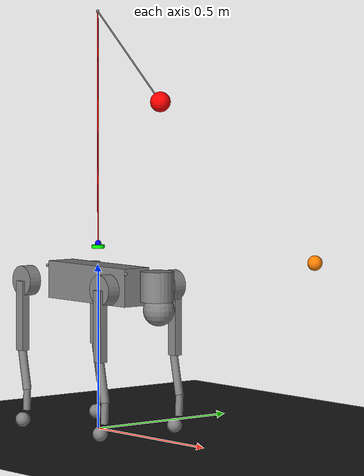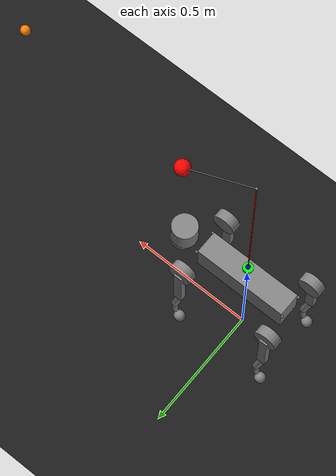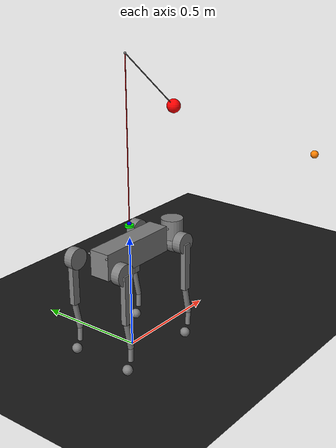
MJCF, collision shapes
<mujoco model="go2 scene">
  <include file="go2rod.xml" />

  <statistic center="0.75 0.75 0.7" extent="0.6" />

  <visual>
    <headlight diffuse="0.6 0.6 0.6" ambient="0.3 0.3 0.3" specular="0 0 0" />
    <rgba haze="0.1 0.1 0.1 1" />
    <global azimuth="225" elevation="-20" />
  </visual>

  <asset>
    <texture type="skybox" builtin="gradient" rgb1="0.1 0.1 0.1" rgb2="0.15 0.15 0.15" width="512"
      height="3072" />
    <texture type="2d" name="groundplane" builtin="checker" mark="edge" rgb1="0.1 0.1 0.1"
      rgb2="0.1 0.1 0.1"
      markrgb="0.8 0.8 0.8" width="300" height="300" />
    <material name="groundplane" texture="groundplane" texuniform="true" texrepeat="5 5"
      reflectance="0.2" />
    <material name="blue_material" rgba="0 0 1 1" />
    <material name="yellow_material" rgba="1 1 0 1" />
    <material name="orange_material" rgba="1 0.5 0 1" />
  </asset>

  <worldbody>
    <light pos="0 0 1.5" dir="0 0 -1" directional="true" />
    <geom name="floor" size="0 0 0.05" type="plane" material="groundplane" />

    <body name="target" pos="1.2 -0.2 0.6">
      <!-- Virtual target sphere -->
      <geom type="sphere" size="0.02" material="orange_material" />

      <!-- Original box target (commented out) -->
    </body>

  </worldbody>

</mujoco>

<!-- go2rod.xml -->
<mujoco model="go2">
  <compiler angle="radian" meshdir="assets" autolimits="true" />

  <option cone="elliptic" impratio="100" />

  <default>
    <default class="go2">
      <geom friction="0.6" margin="0.001" condim="1" />
      <joint axis="0 1 0" damping="2" armature="0.01" frictionloss="0.2" />
      <motor ctrlrange="-23.7 23.7" />
      <default class="abduction">
        <joint axis="1 0 0" range="-1.0472 1.0472" />
      </default>
      <default class="hip">
        <default class="front_hip">
          <joint range="-1.5708 3.4907" />
        </default>
        <default class="back_hip">
          <joint range="-0.5236 4.5379" />
        </default>
      </default>
      <default class="knee">
        <joint range="-2.7227 -0.83776" />
        <motor ctrlrange="-45.43 45.43" />
      </default>
      <default class="visual">
        <geom type="mesh" contype="0" conaffinity="0" group="2" />
      </default>
      <default class="collision">
        <geom group="3" />
        <default class="foot">
          <geom size="0.022" pos="-0.002 0 -0.213" priority="1" solimp="0.015 1 0.022" condim="6"
            friction="0.8 0.02 0.01" />
        </default>
      </default>
    </default>
  </default>

  <asset>
    <material name="metal" rgba=".9 .95 .95 1" />
    <material name="black" rgba="0 0 0 1" />
    <material name="white" rgba="1 1 1 1" />
    <material name="gray" rgba="0.671705 0.692426 0.774270 1" />
    <material name="red_material" rgba="1 0 0 1" />

    <mesh file="base_0.obj" />
    <mesh file="base_1.obj" />
    <mesh file="base_2.obj" />
    <mesh file="base_3.obj" />
    <mesh file="base_4.obj" />
    <mesh file="hip_0.obj" />
    <mesh file="hip_1.obj" />
    <mesh file="thigh_0.obj" />
    <mesh file="thigh_1.obj" />
    <mesh file="thigh_mirror_0.obj" />
    <mesh file="thigh_mirror_1.obj" />
    <mesh file="calf_0.obj" />
    <mesh file="calf_1.obj" />
    <mesh file="calf_mirror_0.obj" />
    <mesh file="calf_mirror_1.obj" />
    <mesh file="foot.obj" />
  </asset>

  <worldbody>
    <body name="base" pos="0 0 0.445" childclass="go2">
      <inertial pos="0.021112 0 -0.005366" quat="-0.000543471 0.713435 -0.00173769 0.700719"
        mass="6.921"
        diaginertia="0.107027 0.0980771 0.0244531" />
      <freejoint />
      <geom mesh="base_0" material="black" class="visual" />
      <geom mesh="base_1" material="black" class="visual" />
      <geom mesh="base_2" material="black" class="visual" />
      <geom mesh="base_3" material="white" class="visual" />
      <geom mesh="base_4" material="gray" class="visual" />
      <geom size="0.1881 0.04675 0.057" type="box" class="collision" />
      <geom size="0.05 0.045" pos="0.285 0 0.01" type="cylinder" class="collision" />
      <geom size="0.047" pos="0.293 0 -0.06" class="collision" />
      <site name="imu_base" pos="-0.02557 0 0.04232" />

      <site name="imu_FL" pos="0.1934 0.0465 0.04232" />  <!-- Front Left IMU Sensor -->
      <site name="imu_FR" pos="0.1934 -0.0465 0.04232" /> <!-- Front Right IMU Sensor -->
      <site name="imu_RL" pos="-0.1934 0.0465 0.04232" /> <!-- Rear Left IMU Sensor -->
      <site name="imu_RR" pos="-0.1934 -0.0465 0.04232" /><!-- Rear Right IMU Sensor -->

      <body name="FL_hip" pos="0.1934 0.0465 0">
        <inertial pos="-0.0054 0.00194 -0.000105" quat="0.497014 0.499245 0.505462 0.498237"
          mass="0.678"
          diaginertia="0.00088403 0.000596003 0.000479967" />
        <joint name="FL_hip_joint" class="abduction" />
        <geom mesh="hip_0" material="metal" class="visual" />
        <geom mesh="hip_1" material="gray" class="visual" />
        <geom size="0.046 0.02" pos="0 0.08 0" quat="1 1 0 0" type="cylinder" class="collision" />
        <body name="FL_thigh" pos="0 0.0955 0">
          <inertial pos="-0.00374 -0.0223 -0.0327" quat="0.829533 0.0847635 -0.0200632 0.551623"
            mass="1.152"
            diaginertia="0.00594973 0.00584149 0.000878787" />
          <joint name="FL_thigh_joint" class="front_hip" />
          <geom mesh="thigh_0" material="metal" class="visual" />
          <geom mesh="thigh_1" material="gray" class="visual" />
          <geom size="0.1065 0.01225 0.017" pos="0 0 -0.1065" quat="0.707107 0 0.707107 0"
            type="box" class="collision" />
          <body name="FL_calf" pos="0 0 -0.213">
            <inertial pos="0.00629595 -0.000622121 -0.141417"
              quat="0.710672 0.00154099 -0.00450087 0.703508"
              mass="0.241352" diaginertia="0.0014901 0.00146356 5.31397e-05" />
            <joint name="FL_calf_joint" class="knee" />
            <geom mesh="calf_0" material="gray" class="visual" />
            <geom mesh="calf_1" material="black" class="visual" />
            <geom size="0.012 0.06" pos="0.008 0 -0.06" quat="0.994493 0 -0.104807 0"
              type="cylinder" class="collision" />
            <geom size="0.011 0.0325" pos="0.02 0 -0.148" quat="0.999688 0 0.0249974 0"
              type="cylinder" class="collision" />
            <geom pos="0 0 -0.213" mesh="foot" class="visual" material="black" />
            <geom name="FL" class="foot" />
          </body>
        </body>
      </body>
      <body name="FR_hip" pos="0.1934 -0.0465 0">
        <inertial pos="-0.0054 -0.00194 -0.000105" quat="0.498237 0.505462 0.499245 0.497014"
          mass="0.678"
          diaginertia="0.00088403 0.000596003 0.000479967" />
        <joint name="FR_hip_joint" class="abduction" />
        <geom mesh="hip_0" material="metal" class="visual" quat="4.63268e-05 1 0 0" />
        <geom mesh="hip_1" material="gray" class="visual" quat="4.63268e-05 1 0 0" />
        <geom size="0.046 0.02" pos="0 -0.08 0" quat="0.707107 0.707107 0 0" type="cylinder"
          class="collision" />
        <body name="FR_thigh" pos="0 -0.0955 0">
          <inertial pos="-0.00374 0.0223 -0.0327" quat="0.551623 -0.0200632 0.0847635 0.829533"
            mass="1.152"
            diaginertia="0.00594973 0.00584149 0.000878787" />
          <joint name="FR_thigh_joint" class="front_hip" />
          <geom mesh="thigh_mirror_0" material="metal" class="visual" />
          <geom mesh="thigh_mirror_1" material="gray" class="visual" />
          <geom size="0.1065 0.01225 0.017" pos="0 0 -0.1065" quat="0.707107 0 0.707107 0"
            type="box" class="collision" />
          <body name="FR_calf" pos="0 0 -0.213">
            <inertial pos="0.00629595 0.000622121 -0.141417"
              quat="0.703508 -0.00450087 0.00154099 0.710672"
              mass="0.241352" diaginertia="0.0014901 0.00146356 5.31397e-05" />
            <joint name="FR_calf_joint" class="knee" />
            <geom mesh="calf_mirror_0" material="gray" class="visual" />
            <geom mesh="calf_mirror_1" material="black" class="visual" />
            <geom size="0.013 0.06" pos="0.01 0 -0.06" quat="0.995004 0 -0.0998334 0"
              type="cylinder" class="collision" />
            <geom size="0.011 0.0325" pos="0.02 0 -0.148" quat="0.999688 0 0.0249974 0"
              type="cylinder" class="collision" />
            <geom pos="0 0 -0.213" mesh="foot" class="visual" material="black" />
            <geom name="FR" class="foot" />
          </body>
        </body>
      </body>
      <body name="RL_hip" pos="-0.1934 0.0465 0">
        <inertial pos="0.0054 0.00194 -0.000105" quat="0.505462 0.498237 0.497014 0.499245"
          mass="0.678"
          diaginertia="0.00088403 0.000596003 0.000479967" />
        <joint name="RL_hip_joint" class="abduction" />
        <geom mesh="hip_0" material="metal" class="visual" quat="4.63268e-05 0 1 0" />
        <geom mesh="hip_1" material="gray" class="visual" quat="4.63268e-05 0 1 0" />
        <geom size="0.046 0.02" pos="0 0.08 0" quat="0.707107 0.707107 0 0" type="cylinder"
          class="collision" />
        <body name="RL_thigh" pos="0 0.0955 0">
          <inertial pos="-0.00374 -0.0223 -0.0327" quat="0.829533 0.0847635 -0.0200632 0.551623"
            mass="1.152"
            diaginertia="0.00594973 0.00584149 0.000878787" />
          <joint name="RL_thigh_joint" class="back_hip" />
          <geom mesh="thigh_0" material="metal" class="visual" />
          <geom mesh="thigh_1" material="gray" class="visual" />
          <geom size="0.1065 0.01225 0.017" pos="0 0 -0.1065" quat="0.707107 0 0.707107 0"
            type="box" class="collision" />
          <body name="RL_calf" pos="0 0 -0.213">
            <inertial pos="0.00629595 -0.000622121 -0.141417"
              quat="0.710672 0.00154099 -0.00450087 0.703508"
              mass="0.241352" diaginertia="0.0014901 0.00146356 5.31397e-05" />
            <joint name="RL_calf_joint" class="knee" />
            <geom mesh="calf_0" material="gray" class="visual" />
            <geom mesh="calf_1" material="black" class="visual" />
            <geom size="0.013 0.06" pos="0.01 0 -0.06" quat="0.995004 0 -0.0998334 0"
              type="cylinder" class="collision" />
            <geom size="0.011 0.0325" pos="0.02 0 -0.148" quat="0.999688 0 0.0249974 0"
              type="cylinder" class="collision" />
            <geom pos="0 0 -0.213" mesh="foot" class="visual" material="black" />
            <geom name="RL" class="foot" />
          </body>
        </body>
      </body>
      <body name="RR_hip" pos="-0.1934 -0.0465 0">
        <inertial pos="0.0054 -0.00194 -0.000105" quat="0.499245 0.497014 0.498237 0.505462"
          mass="0.678"
          diaginertia="0.00088403 0.000596003 0.000479967" />
        <joint name="RR_hip_joint" class="abduction" />
        <geom mesh="hip_0" material="metal" class="visual"
          quat="2.14617e-09 4.63268e-05 4.63268e-05 -1" />
        <geom mesh="hip_1" material="gray" class="visual"
          quat="2.14617e-09 4.63268e-05 4.63268e-05 -1" />
        <geom size="0.046 0.02" pos="0 -0.08 0" quat="0.707107 0.707107 0 0" type="cylinder"
          class="collision" />
        <body name="RR_thigh" pos="0 -0.0955 0">
          <inertial pos="-0.00374 0.0223 -0.0327" quat="0.551623 -0.0200632 0.0847635 0.829533"
            mass="1.152"
            diaginertia="0.00594973 0.00584149 0.000878787" />
          <joint name="RR_thigh_joint" class="back_hip" />
          <geom mesh="thigh_mirror_0" material="metal" class="visual" />
          <geom mesh="thigh_mirror_1" material="gray" class="visual" />
          <geom size="0.1065 0.01225 0.017" pos="0 0 -0.1065" quat="0.707107 0 0.707107 0"
            type="box" class="collision" />
          <body name="RR_calf" pos="0 0 -0.213">
            <inertial pos="0.00629595 0.000622121 -0.141417"
              quat="0.703508 -0.00450087 0.00154099 0.710672"
              mass="0.241352" diaginertia="0.0014901 0.00146356 5.31397e-05" />
            <joint name="RR_calf_joint" class="knee" />
            <geom mesh="calf_mirror_0" material="gray" class="visual" />
            <geom mesh="calf_mirror_1" material="black" class="visual" />
            <geom size="0.013 0.06" pos="0.01 0 -0.06" quat="0.995004 0 -0.0998334 0"
              type="cylinder" class="collision" />
            <geom size="0.011 0.0325" pos="0.02 0 -0.148" quat="0.999688 0 0.0249974 0"
              type="cylinder" class="collision" />
            <geom pos="0 0 -0.213" mesh="foot" class="visual" material="black" />
            <geom name="RR" class="foot" />
          </body>
        </body>
      </body>

      <body name="motor_base" pos="0.0 0 0.11">
        <joint name="motor_rotation" type="hinge" axis="0 0 1" pos="0 0 0" range="-2.0944 2.0944" />
        <geom type="cylinder" size="0.02 0.005" rgba="0 1 0 1" />

        <body name="rod" pos="0 0 0.01">
          <joint name="rod_joint" type="hinge" axis="0 1 0" pos="0 0 0" range="-1.5708 1.5708"
            damping="1" />
          <geom type="cylinder" size="0.002 0.35" pos="0 0 0.35" rgba="1 0 0 1" contype="1"
            conaffinity="1" group="0" />
          <inertial mass="0.2" pos="0 0 0.35" diaginertia="0.1 0.1 0.02" />
          <body pos="0 0 0.7">
            <site name="rope_start" pos="0 0 0" />
            <body pos="0 0 -0.7">
              <geom type="sphere" size="0.009" rgba="0 0 1 1" />
            </body>
          </body>
        </body>
      </body>
    </body>

    <body pos="0.3 0 1">
      <joint type="free" damping="0.02" frictionloss="0.002" range="-0.9 0.9" />
      <geom size="0.03" type="sphere" material="red_material"
        solimp="0.9 0.95 0.001" solref="0.02 1"
        condim="3" friction="1 0.005 0.0001"
        priority="1" />
      <inertial pos="0 0 0" mass="0.025" diaginertia="2e-6 2e-6 2e-6" />
      <site name="rope_end" pos="0 0 0.00001" size="0.0005" />
      <site name="ball_contact_site" pos="0 0 0" size="0.03" />
      <site name="imu_ball" pos="0 0 0" size="0.005" />
    </body>

  </worldbody>

  <tendon>
    <spatial limited="true" range="0 0.75" width="0.002">
      <site site="rope_start" />
      <site site="rope_end" />
    </spatial>
  </tendon>

  <actuator>
    <motor class="abduction" name="FR_hip" joint="FR_hip_joint" />
    <motor class="hip" name="FR_thigh" joint="FR_thigh_joint" />
    <motor class="knee" name="FR_calf" joint="FR_calf_joint" />
    <motor class="abduction" name="FL_hip" joint="FL_hip_joint" />
    <motor class="hip" name="FL_thigh" joint="FL_thigh_joint" />
    <motor class="knee" name="FL_calf" joint="FL_calf_joint" />
    <motor class="abduction" name="RR_hip" joint="RR_hip_joint" />
    <motor class="hip" name="RR_thigh" joint="RR_thigh_joint" />
    <motor class="knee" name="RR_calf" joint="RR_calf_joint" />
    <motor class="abduction" name="RL_hip" joint="RL_hip_joint" />
    <motor class="hip" name="RL_thigh" joint="RL_thigh_joint" />
    <motor class="knee" name="RL_calf" joint="RL_calf_joint" />
    <motor name="motor_base_motor" joint="motor_rotation" gear="3" ctrllimited="true"
      ctrlrange="-1 1" />
    <motor name="rod_motor" joint="rod_joint" gear="3" ctrllimited="true" ctrlrange="-1 1" />
  </actuator>

  <sensor>
    <!-- Base IMU -->
    <accelerometer name="imu_base_accel" site="imu_base" />
    <gyro name="imu_base_gyro" site="imu_base" />

    <!-- Front Left IMU -->
    <accelerometer name="imu_FL_accel" site="imu_FL" />
    <gyro name="imu_FL_gyro" site="imu_FL" />

    <!-- Front Right IMU -->
    <accelerometer name="imu_FR_accel" site="imu_FR" />
    <gyro name="imu_FR_gyro" site="imu_FR" />

    <!-- Rear Left IMU -->
    <accelerometer name="imu_RL_accel" site="imu_RL" />
    <gyro name="imu_RL_gyro" site="imu_RL" />

    <!-- Rear Right IMU -->
    <accelerometer name="imu_RR_accel" site="imu_RR" />
    <gyro name="imu_RR_gyro" site="imu_RR" />

    <!-- Ball IMU -->
    <accelerometer name="imu_ball_accel" site="imu_ball" />
    <gyro name="imu_ball_gyro" site="imu_ball" />

    <!-- Ball Contact Sensor -->
    <touch name="ball_contact_sensor" site="ball_contact_site"
      cutoff="0.0"
    />
  </sensor>

  <keyframe>
    <key name="home"
      qpos="0 0 0.27 1 0 0 0 0 0.9 -1.8 0 0.9 -1.8 0 0.9 -1.8 0 0.9 -1.8 0 0 0 0 0.45 0 0 0 0"
      ctrl="0 0.9 -1.8 0 0.9 -1.8 0 0.9 -1.8 0 0.9 -1.8 0 0" />
    <key name="crouch"
      qpos="0 0 0.27 1 0 0 0 0 0.9 -1.8 0 0.9 -1.8 0 0.9 -1.8 0 0.9 -1.8 0 0 0 0 0.45 0 0 0 0"
      ctrl="0 0.9 -1.8 0 0.9 -1.8 0 0.9 -1.8 0 0.9 -1.8 0 0" />
  </keyframe>
</mujoco>
